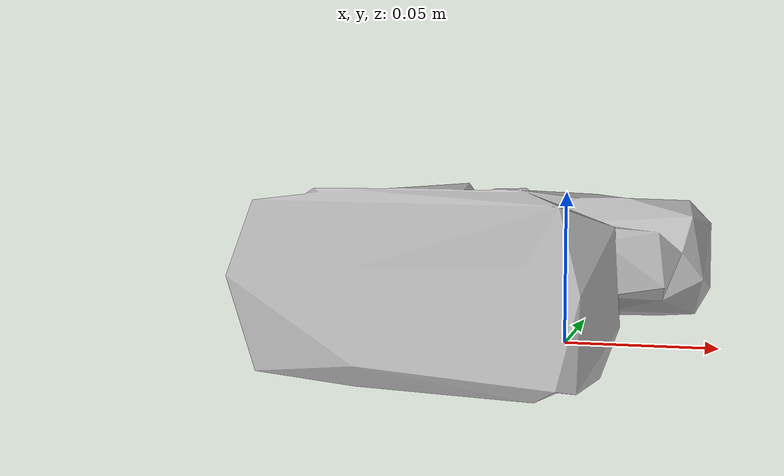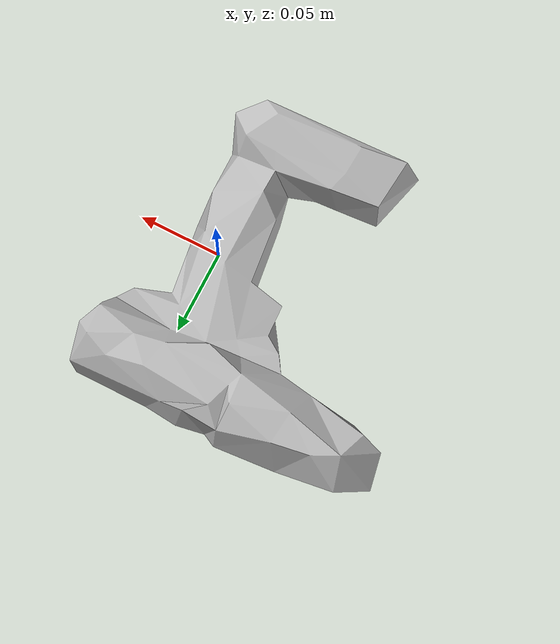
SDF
<?xml version='1.0'?>
<sdf version="1.4">
  <model name="035_power_drill">
    <static>false</static>
    <link name="link">
      <inertial>
        <pose>-0.037552029988568984 0.014246809879713811 0.02410659651611834 -2.091570228622427 -1.5328287318004818 0.7249126312694427</pose>
        <mass>0.12915656112526575</mass>
        <inertia>
          <ixx>0.0005557603167105662</ixx>
          <ixy>-1.9522371819045355e-20</ixy>
          <ixz>-9.468547038589105e-21</ixz>
          <iyy>0.0003645403283012625</iyy>
          <iyz>-8.383920969816996e-21</iyz>
          <izz>0.00024453614387400695</izz>
        </inertia>
      </inertial>
      <collision name="collision">
        <geometry>
          <mesh>
            <!-- Use a downsampled mesh for collisions -->
            <uri>model:///035_power_drill/035_power_drill_250_collision.stl</uri>
	        </mesh>
        </geometry>
        <surface>
      </surface>
      </collision>
      <visual name="visual">
        <geometry>
          <mesh>
            <uri>model:///035_power_drill/textured.obj</uri>
	        </mesh>
        </geometry>
        <material>
          <script>
            <uri>model:///035_power_drill/035_power_drill.material</uri>
            <name>035_power_drill</name>
          </script>
        </material>
      </visual>
    </link>
  </model>
</sdf>
